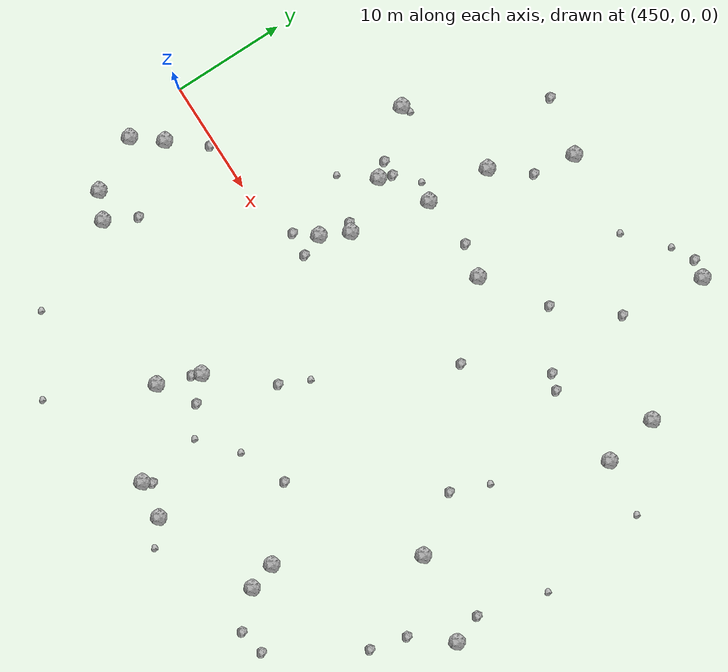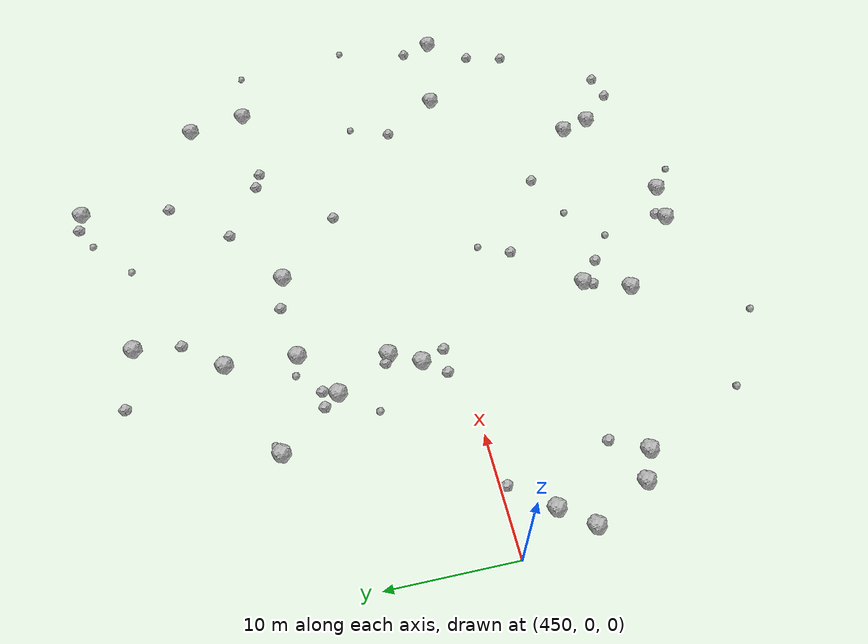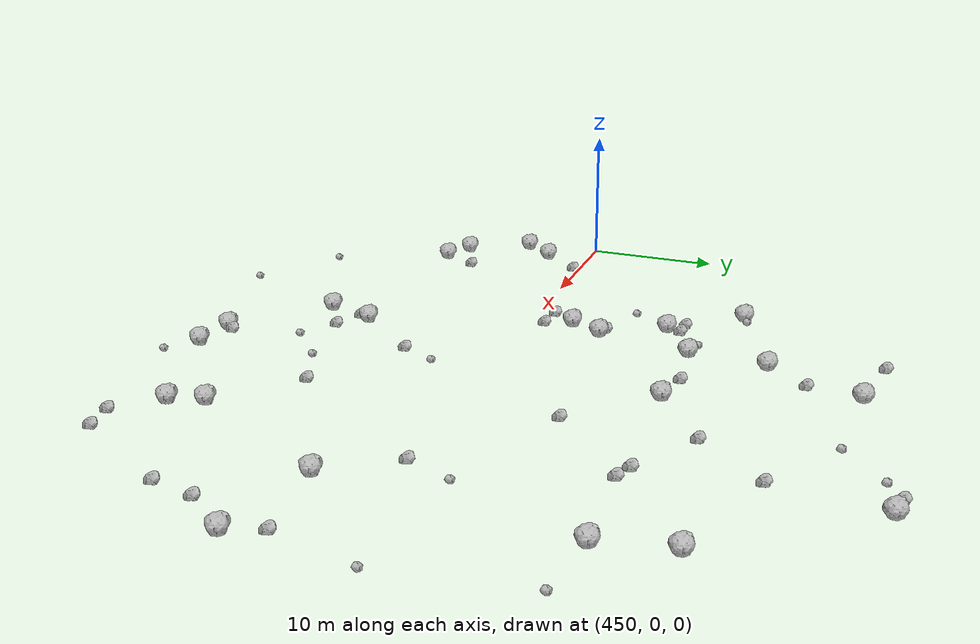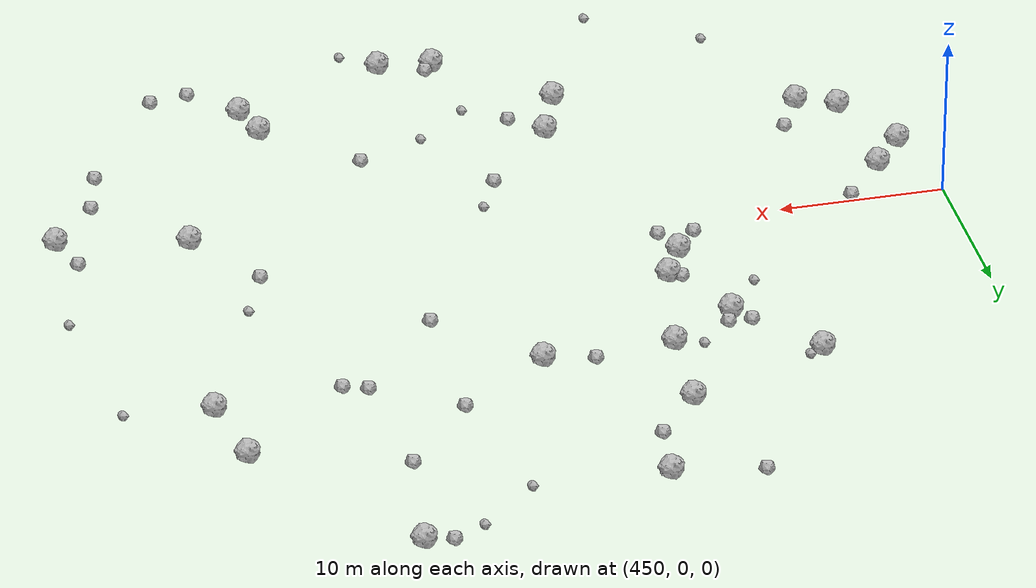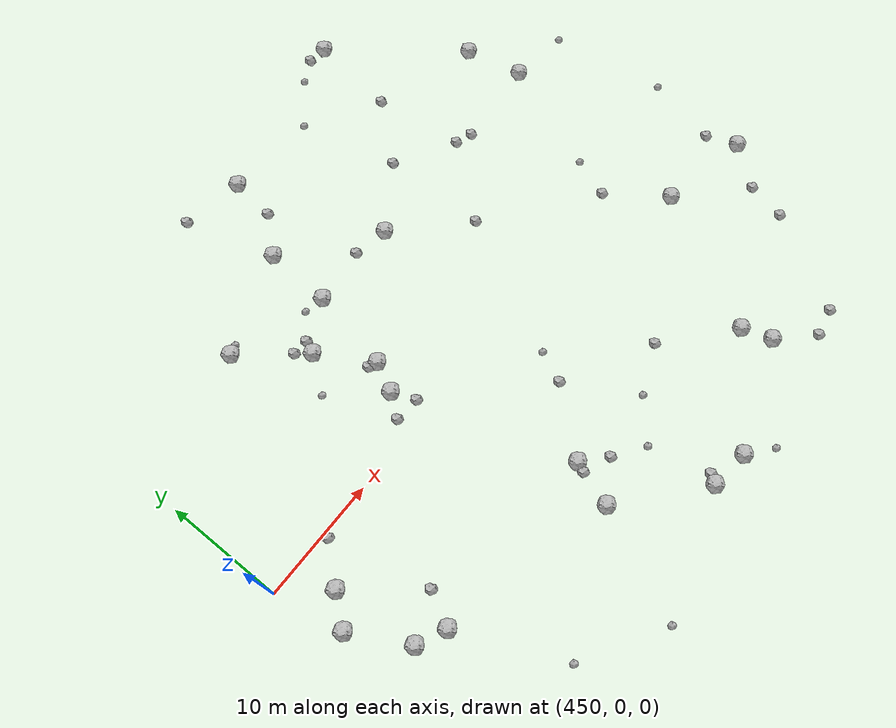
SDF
<sdf version="1.6">
 <world name="default">
  <include><uri>model://sun</uri></include>
  <model name="rock1_12_4">
   <include><uri>model://rock1</uri><pose>455.99207994831164 -11.540386292823264 0.5 0 0 0</pose></include>
  </model>
  <model name="rock1_12_5">
   <include><uri>model://rock1</uri><pose>479.87905849943286 -21.1861320011793 0.5 0 0 0</pose></include>
  </model>
  <model name="rock1_12_6">
   <include><uri>model://rock1</uri><pose>470.26662680957486 -15.25518052153382 0.5 0 0 0</pose></include>
  </model>
  <model name="rock1_12_7">
   <include><uri>model://rock1</uri><pose>477.43282283480977 12.672516777887715 0.5 0 0 0</pose></include>
  </model>
  <model name="rock1_12_8">
   <include><uri>model://rock1</uri><pose>453.0991352123032 -3.419218335834156 0.5 0 0 0</pose></include>
  </model>
  <model name="rock1_12_9">
   <include><uri>model://rock1</uri><pose>471.5948988067142 -11.572673992719853 0.5 0 0 0</pose></include>
  </model>
  <model name="rock1_12_10">
   <include><uri>model://rock1</uri><pose>467.08339066757446 3.2224098500250165 0.5 0 0 0</pose></include>
  </model>
  <model name="rock1_12_11">
   <include><uri>model://rock1</uri><pose>487.87316519573915 28.66706677991288 0.5 0 0 0</pose></include>
  </model>
  <model name="rock1_12_12">
   <include><uri>model://rock1</uri><pose>461.62084611930516 15.164582149297104 0.5 0 0 0</pose></include>
  </model>
  <model name="rock1_12_13">
   <include><uri>model://rock1</uri><pose>488.4320497951869 -15.313464224143058 0.5 0 0 0</pose></include>
  </model>
  <model name="rock1_12_14">
   <include><uri>model://rock1</uri><pose>502.4233170441353 -5.709885038883751 0.5 0 0 0</pose></include>
  </model>
  <model name="rock1_12_15">
   <include><uri>model://rock1</uri><pose>469.71827632742577 12.682862992062574 0.5 0 0 0</pose></include>
  </model>
  <model name="rock1_12_16">
   <include><uri>model://rock1</uri><pose>470.07913543612653 18.400799207798165 0.5 0 0 0</pose></include>
  </model>
  <model name="rock1_12_17">
   <include><uri>model://rock1</uri><pose>473.11517989912664 25.273084586397992 0.5 0 0 0</pose></include>
  </model>
  <model name="rock1_12_18">
   <include><uri>model://rock1</uri><pose>494.7536041548903 -4.13243817075487 0.5 0 0 0</pose></include>
  </model>
  <model name="rock1_12_19">
   <include><uri>model://rock1</uri><pose>489.1852198047742 -17.771752395762 0.5 0 0 0</pose></include>
  </model>
  <model name="rock1_12_20">
   <include><uri>model://rock1</uri><pose>476.5848507391144 -20.75709610956986 0.5 0 0 0</pose></include>
  </model>
  <model name="rock1_12_21">
   <include><uri>model://rock1</uri><pose>495.67489400102295 18.40563301602984 0.5 0 0 0</pose></include>
  </model>
  <model name="rock1_12_22">
   <include><uri>model://rock1</uri><pose>468.3124868973267 5.6510499770117875 0.5 0 0 0</pose></include>
  </model>
  <model name="rock1_12_23">
   <include><uri>model://rock1</uri><pose>453.66291380612904 -10.438762594333998 0.5 0 0 0</pose></include>
  </model>
  <model name="rock1_12_24">
   <include><uri>model://rock1</uri><pose>496.62703509654705 13.487552742607996 0.5 0 0 0</pose></include>
  </model>
  <model name="rock1_12_25">
   <include><uri>model://rock1</uri><pose>465.71074634156327 10.15726774084461 0.5 0 0 0</pose></include>
  </model>
  <model name="rock1_12_26">
   <include><uri>model://rock1</uri><pose>451.22259551466755 -5.7851599357756385 0.5 0 0 0</pose></include>
  </model>
  <model name="rock2_12_0">
   <include><uri>model://rock2</uri><pose>491.4488803949141 0.6348827664869532 0.3 0 0 0</pose></include>
  </model>
  <model name="rock2_12_1">
   <include><uri>model://rock2</uri><pose>482.82075214678974 7.400462915649015 0.3 0 0 0</pose></include>
  </model>
  <model name="rock2_12_2">
   <include><uri>model://rock2</uri><pose>494.1716236397317 -20.062846231468555 0.3 0 0 0</pose></include>
  </model>
  <model name="rock2_12_3">
   <include><uri>model://rock2</uri><pose>487.7299997999322 13.457096898212576 0.3 0 0 0</pose></include>
  </model>
  <model name="rock2_12_4">
   <include><uri>model://rock2</uri><pose>467.867828870878 26.245016548138366 0.3 0 0 0</pose></include>
  </model>
  <model name="rock2_12_5">
   <include><uri>model://rock2</uri><pose>467.5558549348847 5.995313328099037 0.3 0 0 0</pose></include>
  </model>
  <model name="rock2_12_6">
   <include><uri>model://rock2</uri><pose>474.4536307500521 13.290056671086823 0.3 0 0 0</pose></include>
  </model>
  <model name="rock2_12_7">
   <include><uri>model://rock2</uri><pose>483.11541143568263 -10.626277127694056 0.3 0 0 0</pose></include>
  </model>
  <model name="rock2_12_8">
   <include><uri>model://rock2</uri><pose>486.84544600947413 21.21601255446423 0.3 0 0 0</pose></include>
  </model>
  <model name="rock2_12_9">
   <include><uri>model://rock2</uri><pose>499.7321273552053 -9.014766589036377 0.3 0 0 0</pose></include>
  </model>
  <model name="rock2_12_10">
   <include><uri>model://rock2</uri><pose>471.2220043644865 -12.36493925493988 0.3 0 0 0</pose></include>
  </model>
  <model name="rock2_12_11">
   <include><uri>model://rock2</uri><pose>498.94687202986404 -12.240721826191756 0.3 0 0 0</pose></include>
  </model>
  <model name="rock2_12_12">
   <include><uri>model://rock2</uri><pose>465.68553748974847 1.4424316496344822 0.3 0 0 0</pose></include>
  </model>
  <model name="rock2_12_13">
   <include><uri>model://rock2</uri><pose>501.50104222572145 -3.1013943529068726 0.3 0 0 0</pose></include>
  </model>
  <model name="rock2_12_14">
   <include><uri>model://rock2</uri><pose>491.8208769144609 -20.49644891287464 0.3 0 0 0</pose></include>
  </model>
  <model name="rock2_12_15">
   <include><uri>model://rock2</uri><pose>472.6067605125165 21.50353038322273 0.3 0 0 0</pose></include>
  </model>
  <model name="rock2_12_16">
   <include><uri>model://rock2</uri><pose>467.80766130825197 1.2770378310869148 0.3 0 0 0</pose></include>
  </model>
  <model name="rock2_12_17">
   <include><uri>model://rock2</uri><pose>464.7624191833822 11.36235008705848 0.3 0 0 0</pose></include>
  </model>
  <model name="rock2_12_18">
   <include><uri>model://rock2</uri><pose>473.465218845615 -13.300093273009349 0.3 0 0 0</pose></include>
  </model>
  <model name="rock2_12_19">
   <include><uri>model://rock2</uri><pose>475.86633770165025 -6.586199650006801 0.3 0 0 0</pose></include>
  </model>
  <model name="rock2_12_20">
   <include><uri>model://rock2</uri><pose>457.37994242962566 -8.819917111830527 0.3 0 0 0</pose></include>
  </model>
  <model name="rock2_12_21">
   <include><uri>model://rock2</uri><pose>486.21727312456227 28.960422354675607 0.3 0 0 0</pose></include>
  </model>
  <model name="rock2_12_22">
   <include><uri>model://rock2</uri><pose>455.5368660537389 -0.41035445887562716 0.3 0 0 0</pose></include>
  </model>
  <model name="rock2_12_23">
   <include><uri>model://rock2</uri><pose>466.1329403139663 11.30816755985272 0.3 0 0 0</pose></include>
  </model>
  <model name="rock2_12_24">
   <include><uri>model://rock2</uri><pose>482.7874870901831 16.40680191078465 0.3 0 0 0</pose></include>
  </model>
  <model name="rock2_12_25">
   <include><uri>model://rock2</uri><pose>489.1414150817644 12.954322208498446 0.3 0 0 0</pose></include>
  </model>
  <model name="rock2_12_26">
   <include><uri>model://rock2</uri><pose>477.1101061575714 -20.060402436019352 0.3 0 0 0</pose></include>
  </model>
  <model name="rock3_12_0">
   <include><uri>model://rock3</uri><pose>475.8951035347465 -15.086147663468136 0.2 0 0 0</pose></include>
  </model>
  <model name="rock3_12_1">
   <include><uri>model://rock3</uri><pose>480.85243671662147 24.850794752304566 0.2 0 0 0</pose></include>
  </model>
  <model name="rock3_12_2">
   <include><uri>model://rock3</uri><pose>463.52178876116017 7.273540150457933 0.2 0 0 0</pose></include>
  </model>
  <model name="rock3_12_3">
   <include><uri>model://rock3</uri><pose>466.0891212899684 -24.13175426314274 0.2 0 0 0</pose></include>
  </model>
  <model name="rock3_12_4">
   <include><uri>model://rock3</uri><pose>462.3748620754077 15.514787237888264 0.2 0 0 0</pose></include>
  </model>
  <model name="rock3_12_5">
   <include><uri>model://rock3</uri><pose>479.0169334290856 -12.411086078036703 0.2 0 0 0</pose></include>
  </model>
  <model name="rock3_12_6">
   <include><uri>model://rock3</uri><pose>492.73986085537194 3.9114719382752057 0.2 0 0 0</pose></include>
  </model>
  <model name="rock3_12_7">
   <include><uri>model://rock3</uri><pose>501.68201570335225 12.896406139909743 0.2 0 0 0</pose></include>
  </model>
  <model name="rock3_12_8">
   <include><uri>model://rock3</uri><pose>467.9824571912511 13.042038229251695 0.2 0 0 0</pose></include>
  </model>
  <model name="rock3_12_9">
   <include><uri>model://rock3</uri><pose>503.06004388301375 3.013618306095715 0.2 0 0 0</pose></include>
  </model>
  <model name="rock3_12_10">
   <include><uri>model://rock3</uri><pose>459.62451737066834 -20.141077074466956 0.2 0 0 0</pose></include>
  </model>
  <model name="rock3_12_11">
   <include><uri>model://rock3</uri><pose>481.84408858379663 -22.916739583632882 0.2 0 0 0</pose></include>
  </model>
  <model name="rock3_12_12">
   <include><uri>model://rock3</uri><pose>484.2454613577706 27.86846411860521 0.2 0 0 0</pose></include>
  </model>
  <model name="rock3_12_13">
   <include><uri>model://rock3</uri><pose>477.0325642971791 -4.071363074020788 0.2 0 0 0</pose></include>
  </model>
 </world>
</sdf>
